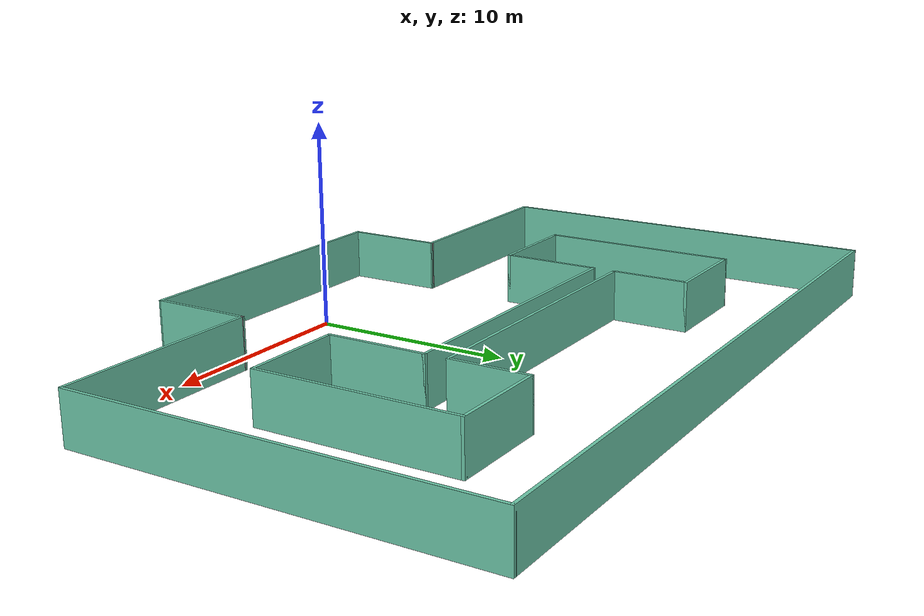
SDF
<?xml version='1.0'?>
<sdf version='1.6'>
  <model name='warehouse'>
    <pose frame=''>-0.218107 8.48431 0 0 -0 0</pose>
    <link name='Wall_101'>
      <collision name='Wall_101_Collision'>
        <geometry>
          <box>
            <size>5 0.15 2.5</size>
          </box>
        </geometry>
        <pose frame=''>0 0 1.25 0 -0 0</pose>
      </collision>
      <visual name='Wall_101_Visual'>
        <pose frame=''>0 0 1.25 0 -0 0</pose>
        <geometry>
          <box>
            <size>5 0.15 2.5</size>
          </box>
        </geometry>
        <material>
          <script>
            <uri>file://media/materials/scripts/gazebo.material</uri>
            <name>Gazebo/Grey</name>
          </script>
          <ambient>0.435294 0.796078 0.67451 1</ambient>
        </material>
        <meta>
          <layer>0</layer>
        </meta>
      </visual>
      <pose frame=''>7.29415 -0.241496 0 0 -0 1.57078</pose>
    </link>
    <link name='Wall_103'>
      <collision name='Wall_103_Collision'>
        <geometry>
          <box>
            <size>5 0.15 2.5</size>
          </box>
        </geometry>
        <pose frame=''>0 0 1.25 0 -0 0</pose>
      </collision>
      <visual name='Wall_103_Visual'>
        <pose frame=''>0 0 1.25 0 -0 0</pose>
        <geometry>
          <box>
            <size>5 0.15 2.5</size>
          </box>
        </geometry>
        <material>
          <script>
            <uri>file://media/materials/scripts/gazebo.material</uri>
            <name>Gazebo/Grey</name>
          </script>
          <ambient>0.435294 0.796078 0.67451 1</ambient>
        </material>
        <meta>
          <layer>0</layer>
        </meta>
      </visual>
      <pose frame=''>-10.0001 -2.66639 0 0 -0 3.14159</pose>
    </link>
    <link name='Wall_106'>
      <collision name='Wall_106_Collision'>
        <geometry>
          <box>
            <size>0.15 0.15 2.5</size>
          </box>
        </geometry>
        <pose frame=''>0 0 1.25 0 -0 0</pose>
      </collision>
      <visual name='Wall_106_Visual'>
        <pose frame=''>0 0 1.25 0 -0 0</pose>
        <geometry>
          <box>
            <size>0.15 0.15 2.5</size>
          </box>
        </geometry>
        <material>
          <script>
            <uri>file://media/materials/scripts/gazebo.material</uri>
            <name>Gazebo/Grey</name>
          </script>
          <ambient>1 1 1 1</ambient>
        </material>
        <meta>
          <layer>0</layer>
        </meta>
      </visual>
      <pose frame=''>-7.57511 -7.51639 0 0 -0 0</pose>
    </link>
    <link name='Wall_107'>
      <collision name='Wall_107_Collision'>
        <geometry>
          <box>
            <size>5 0.15 2.5</size>
          </box>
        </geometry>
        <pose frame=''>0 0 1.25 0 -0 0</pose>
      </collision>
      <visual name='Wall_107_Visual'>
        <pose frame=''>0 0 1.25 0 -0 0</pose>
        <geometry>
          <box>
            <size>5 0.15 2.5</size>
          </box>
        </geometry>
        <material>
          <script>
            <uri>file://media/materials/scripts/gazebo.material</uri>
            <name>Gazebo/Grey</name>
          </script>
          <ambient>0.435294 0.796078 0.67451 1</ambient>
        </material>
        <meta>
          <layer>0</layer>
        </meta>
      </visual>
      <pose frame=''>-7.56892 -9.94138 0 0 0 -1.56825</pose>
    </link>
    <link name='Wall_110'>
      <collision name='Wall_110_Collision'>
        <geometry>
          <box>
            <size>0.15 0.15 2.5</size>
          </box>
        </geometry>
        <pose frame=''>0 0 1.25 0 -0 0</pose>
      </collision>
      <visual name='Wall_110_Visual'>
        <pose frame=''>0 0 1.25 0 -0 0</pose>
        <geometry>
          <box>
            <size>0.15 0.15 2.5</size>
          </box>
        </geometry>
        <material>
          <script>
            <uri>file://media/materials/scripts/gazebo.material</uri>
            <name>Gazebo/Grey</name>
          </script>
          <ambient>1 1 1 1</ambient>
        </material>
        <meta>
          <layer>0</layer>
        </meta>
      </visual>
      <pose frame=''>7.29419 -7.51668 0 0 -0 0</pose>
    </link>
    <link name='Wall_111'>
      <collision name='Wall_111_Collision'>
        <geometry>
          <box>
            <size>5 0.15 2.5</size>
          </box>
        </geometry>
        <pose frame=''>0 0 1.25 0 -0 0</pose>
      </collision>
      <visual name='Wall_111_Visual'>
        <pose frame=''>0 0 1.25 0 -0 0</pose>
        <geometry>
          <box>
            <size>5 0.15 2.5</size>
          </box>
        </geometry>
        <material>
          <script>
            <uri>file://media/materials/scripts/gazebo.material</uri>
            <name>Gazebo/Grey</name>
          </script>
          <ambient>0.435294 0.796078 0.67451 1</ambient>
        </material>
        <meta>
          <layer>0</layer>
        </meta>
      </visual>
      <pose frame=''>7.29073 -9.94166 0 0 0 -1.57223</pose>
    </link>
    <link name='Wall_113'>
      <collision name='Wall_113_Collision'>
        <geometry>
          <box>
            <size>10 0.15 2.5</size>
          </box>
        </geometry>
        <pose frame=''>0 0 1.25 0 -0 0</pose>
      </collision>
      <visual name='Wall_113_Visual'>
        <pose frame=''>0 0 1.25 0 -0 0</pose>
        <geometry>
          <box>
            <size>10 0.15 2.5</size>
          </box>
        </geometry>
        <material>
          <script>
            <uri>file://media/materials/scripts/gazebo.material</uri>
            <name>Gazebo/Grey</name>
          </script>
          <ambient>0.435294 0.796078 0.67451 1</ambient>
        </material>
        <meta>
          <layer>0</layer>
        </meta>
      </visual>
      <pose frame=''>-12.5001 -7.51639 0 0 -0 3.14159</pose>
    </link>
    <link name='Wall_127'>
      <collision name='Wall_127_Collision'>
        <geometry>
          <box>
            <size>20 0.15 2.5</size>
          </box>
        </geometry>
        <pose frame=''>0 0 1.25 0 -0 0</pose>
      </collision>
      <visual name='Wall_127_Visual'>
        <pose frame=''>0 0 1.25 0 -0 0</pose>
        <geometry>
          <box>
            <size>20 0.15 2.5</size>
          </box>
        </geometry>
        <material>
          <script>
            <uri>file://media/materials/scripts/gazebo.material</uri>
            <name>Gazebo/Grey</name>
          </script>
          <ambient>0.435294 0.796078 0.67451 1</ambient>
        </material>
        <meta>
          <layer>0</layer>
        </meta>
      </visual>
      <pose frame=''>-17.4251 2.40861 0 0 -0 1.5708</pose>
    </link>
    <link name='Wall_129'>
      <collision name='Wall_129_Collision'>
        <geometry>
          <box>
            <size>10 0.15 2.5</size>
          </box>
        </geometry>
        <pose frame=''>0 0 1.25 0 -0 0</pose>
      </collision>
      <visual name='Wall_129_Visual'>
        <pose frame=''>0 0 1.25 0 -0 0</pose>
        <geometry>
          <box>
            <size>10 0.15 2.5</size>
          </box>
        </geometry>
        <material>
          <script>
            <uri>file://media/materials/scripts/gazebo.material</uri>
            <name>Gazebo/Grey</name>
          </script>
          <ambient>0.435294 0.796078 0.67451 1</ambient>
        </material>
        <meta>
          <layer>0</layer>
        </meta>
      </visual>
      <pose frame=''>-12.4251 2.25861 0 0 -0 1.5708</pose>
    </link>
    <link name='Wall_131'>
      <collision name='Wall_131_Collision'>
        <geometry>
          <box>
            <size>35 0.15 2.5</size>
          </box>
        </geometry>
        <pose frame=''>0 0 1.25 0 -0 0</pose>
      </collision>
      <visual name='Wall_131_Visual'>
        <pose frame=''>0 0 1.25 0 -0 0</pose>
        <geometry>
          <box>
            <size>35 0.15 2.5</size>
          </box>
        </geometry>
        <material>
          <script>
            <uri>file://media/materials/scripts/gazebo.material</uri>
            <name>Gazebo/Grey</name>
          </script>
          <ambient>0.435294 0.796078 0.67451 1</ambient>
        </material>
        <meta>
          <layer>0</layer>
        </meta>
      </visual>
      <pose frame=''>-1e-06 12.3502 0 0 -0 0.000949</pose>
    </link>
    <link name='Wall_135'>
      <collision name='Wall_135_Collision'>
        <geometry>
          <box>
            <size>5 0.15 2.5</size>
          </box>
        </geometry>
        <pose frame=''>0 0 1.25 0 -0 0</pose>
      </collision>
      <visual name='Wall_135_Visual'>
        <pose frame=''>0 0 1.25 0 -0 0</pose>
        <geometry>
          <box>
            <size>5 0.15 2.5</size>
          </box>
        </geometry>
        <material>
          <script>
            <uri>file://media/materials/scripts/gazebo.material</uri>
            <name>Gazebo/Grey</name>
          </script>
          <ambient>0.435294 0.796078 0.67451 1</ambient>
        </material>
        <meta>
          <layer>0</layer>
        </meta>
      </visual>
      <pose frame=''>9.71911 -2.66631 0 0 -0 0</pose>
    </link>
    <link name='Wall_137'>
      <collision name='Wall_137_Collision'>
        <geometry>
          <box>
            <size>10 0.15 2.5</size>
          </box>
        </geometry>
        <pose frame=''>0 0 1.25 0 -0 0</pose>
      </collision>
      <visual name='Wall_137_Visual'>
        <pose frame=''>0 0 1.25 0 -0 0</pose>
        <geometry>
          <box>
            <size>10 0.15 2.5</size>
          </box>
        </geometry>
        <material>
          <script>
            <uri>file://media/materials/scripts/gazebo.material</uri>
            <name>Gazebo/Grey</name>
          </script>
          <ambient>0.435294 0.796078 0.67451 1</ambient>
        </material>
        <meta>
          <layer>0</layer>
        </meta>
      </visual>
      <pose frame=''>12.1441 2.25869 0 0 -0 1.5708</pose>
    </link>
    <link name='Wall_141'>
      <collision name='Wall_141_Collision'>
        <geometry>
          <box>
            <size>10.25 0.15 2.5</size>
          </box>
        </geometry>
        <pose frame=''>0 0 1.25 0 -0 0</pose>
      </collision>
      <visual name='Wall_141_Visual'>
        <pose frame=''>0 0 1.25 0 -0 0</pose>
        <geometry>
          <box>
            <size>10.25 0.15 2.5</size>
          </box>
        </geometry>
        <material>
          <script>
            <uri>file://media/materials/scripts/gazebo.material</uri>
            <name>Gazebo/Grey</name>
          </script>
          <ambient>0.435294 0.796078 0.67451 1</ambient>
        </material>
        <meta>
          <layer>0</layer>
        </meta>
      </visual>
      <pose frame=''>12.3442 -7.51668 0 0 -0 0</pose>
    </link>
    <link name='Wall_147'>
      <collision name='Wall_147_Collision'>
        <geometry>
          <box>
            <size>20 0.15 2.5</size>
          </box>
        </geometry>
        <pose frame=''>0 0 1.25 0 -0 0</pose>
      </collision>
      <visual name='Wall_147_Visual'>
        <pose frame=''>0 0 1.25 0 -0 0</pose>
        <geometry>
          <box>
            <size>20 0.15 2.5</size>
          </box>
        </geometry>
        <material>
          <script>
            <uri>file://media/materials/scripts/gazebo.material</uri>
            <name>Gazebo/Grey</name>
          </script>
          <ambient>0.435294 0.796078 0.67451 1</ambient>
        </material>
        <meta>
          <layer>0</layer>
        </meta>
      </visual>
      <pose frame=''>17.4251 2.44169 0 0 0 -1.5708</pose>
    </link>
    <link name='Wall_149'>
      <collision name='Wall_149_Collision'>
        <geometry>
          <box>
            <size>5 0.15 2.5</size>
          </box>
        </geometry>
        <pose frame=''>0 0 1.25 0 -0 0</pose>
      </collision>
      <visual name='Wall_149_Visual'>
        <pose frame=''>0 0 1.25 0 -0 0</pose>
        <geometry>
          <box>
            <size>5 0.15 2.5</size>
          </box>
        </geometry>
        <material>
          <script>
            <uri>file://media/materials/scripts/gazebo.material</uri>
            <name>Gazebo/Grey</name>
          </script>
          <ambient>0.435294 0.796078 0.67451 1</ambient>
        </material>
        <meta>
          <layer>0</layer>
        </meta>
      </visual>
      <pose frame=''>-10.0001 7.18361 0 0 -0 0</pose>
    </link>
    <link name='Wall_151'>
      <collision name='Wall_151_Collision'>
        <geometry>
          <box>
            <size>4 0.15 2.5</size>
          </box>
        </geometry>
        <pose frame=''>0 0 1.25 0 -0 0</pose>
      </collision>
      <visual name='Wall_151_Visual'>
        <pose frame=''>0 0 1.25 0 -0 0</pose>
        <geometry>
          <box>
            <size>4 0.15 2.5</size>
          </box>
        </geometry>
        <material>
          <script>
            <uri>file://media/materials/scripts/gazebo.material</uri>
            <name>Gazebo/Grey</name>
          </script>
          <ambient>0.435294 0.796078 0.67451 1</ambient>
        </material>
        <meta>
          <layer>0</layer>
        </meta>
      </visual>
      <pose frame=''>-7.57511 5.25861 0 0 0 -1.5708</pose>
    </link>
    <link name='Wall_155'>
      <collision name='Wall_155_Collision'>
        <geometry>
          <box>
            <size>15 0.15 2.5</size>
          </box>
        </geometry>
        <pose frame=''>0 0 1.25 0 -0 0</pose>
      </collision>
      <visual name='Wall_155_Visual'>
        <pose frame=''>0 0 1.25 0 -0 0</pose>
        <geometry>
          <box>
            <size>15 0.15 2.5</size>
          </box>
        </geometry>
        <material>
          <script>
            <uri>file://media/materials/scripts/gazebo.material</uri>
            <name>Gazebo/Grey</name>
          </script>
          <ambient>0.435294 0.796078 0.67451 1</ambient>
        </material>
        <meta>
          <layer>0</layer>
        </meta>
      </visual>
      <pose frame=''>-0.150109 3.33361 0 0 -0 0</pose>
    </link>
    <link name='Wall_158'>
      <collision name='Wall_158_Collision'>
        <geometry>
          <box>
            <size>4 0.15 2.5</size>
          </box>
        </geometry>
        <pose frame=''>0 0 1.25 0 -0 0</pose>
      </collision>
      <visual name='Wall_158_Visual'>
        <pose frame=''>0 0 1.25 0 -0 0</pose>
        <geometry>
          <box>
            <size>4 0.15 2.5</size>
          </box>
        </geometry>
        <material>
          <script>
            <uri>file://media/materials/scripts/gazebo.material</uri>
            <name>Gazebo/Grey</name>
          </script>
          <ambient>0.435294 0.796078 0.67451 1</ambient>
        </material>
        <meta>
          <layer>0</layer>
        </meta>
      </visual>
      <pose frame=''>7.27489 5.25861 0 0 -0 1.5708</pose>
    </link>
    <link name='Wall_160'>
      <collision name='Wall_160_Collision'>
        <geometry>
          <box>
            <size>5.01922 0.15 2.5</size>
          </box>
        </geometry>
        <pose frame=''>0 0 1.25 0 -0 0</pose>
      </collision>
      <visual name='Wall_160_Visual'>
        <pose frame=''>0 0 1.25 0 -0 0</pose>
        <geometry>
          <box>
            <size>5.01922 0.15 2.5</size>
          </box>
        </geometry>
        <material>
          <script>
            <uri>file://media/materials/scripts/gazebo.material</uri>
            <name>Gazebo/Grey</name>
          </script>
          <ambient>0.435294 0.796078 0.67451 1</ambient>
        </material>
        <meta>
          <layer>0</layer>
        </meta>
      </visual>
      <pose frame=''>9.7095 7.18365 0 0 -0 1.7e-05</pose>
    </link>
    <link name='Wall_2'>
      <collision name='Wall_2_Collision'>
        <geometry>
          <box>
            <size>15 0.15 2.5</size>
          </box>
        </geometry>
        <pose frame=''>0 0 1.25 0 -0 0</pose>
      </collision>
      <visual name='Wall_2_Visual'>
        <pose frame=''>0 0 1.25 0 -0 0</pose>
        <geometry>
          <box>
            <size>15 0.15 2.5</size>
          </box>
        </geometry>
        <material>
          <script>
            <uri>file://media/materials/scripts/gazebo.material</uri>
            <name>Gazebo/Grey</name>
          </script>
          <ambient>0.435294 0.796078 0.67451 1</ambient>
        </material>
        <meta>
          <layer>0</layer>
        </meta>
      </visual>
      <pose frame=''>-0.13774 -12.3665 0 0 0 -1.8e-05</pose>
    </link>
    <link name='Wall_93'>
      <collision name='Wall_93_Collision'>
        <geometry>
          <box>
            <size>5 0.15 2.5</size>
          </box>
        </geometry>
        <pose frame=''>0 0 1.25 0 -0 0</pose>
      </collision>
      <visual name='Wall_93_Visual'>
        <pose frame=''>0 0 1.25 0 -0 0</pose>
        <geometry>
          <box>
            <size>5 0.15 2.5</size>
          </box>
        </geometry>
        <material>
          <script>
            <uri>file://media/materials/scripts/gazebo.material</uri>
            <name>Gazebo/Grey</name>
          </script>
          <ambient>0.435294 0.796078 0.67451 1</ambient>
        </material>
        <meta>
          <layer>0</layer>
        </meta>
      </visual>
      <pose frame=''>-7.57511 -0.24139 0 0 -0 1.5708</pose>
    </link>
    <link name='Wall_94'>
      <collision name='Wall_94_Collision'>
        <geometry>
          <box>
            <size>15.0193 0.15 2.5</size>
          </box>
        </geometry>
        <pose frame=''>0 0 1.25 0 -0 0</pose>
      </collision>
      <visual name='Wall_94_Visual'>
        <pose frame=''>0 0 1.25 0 -0 0</pose>
        <geometry>
          <box>
            <size>15.0193 0.15 2.5</size>
          </box>
        </geometry>
        <material>
          <script>
            <uri>file://media/materials/scripts/gazebo.material</uri>
            <name>Gazebo/Grey</name>
          </script>
          <ambient>0.435294 0.796078 0.67451 1</ambient>
        </material>
        <meta>
          <layer>0</layer>
        </meta>
      </visual>
      <pose frame=''>-0.140458 2.18346 0 0 0 -2e-05</pose>
    </link>
    <static>1</static>
  </model>
</sdf>
